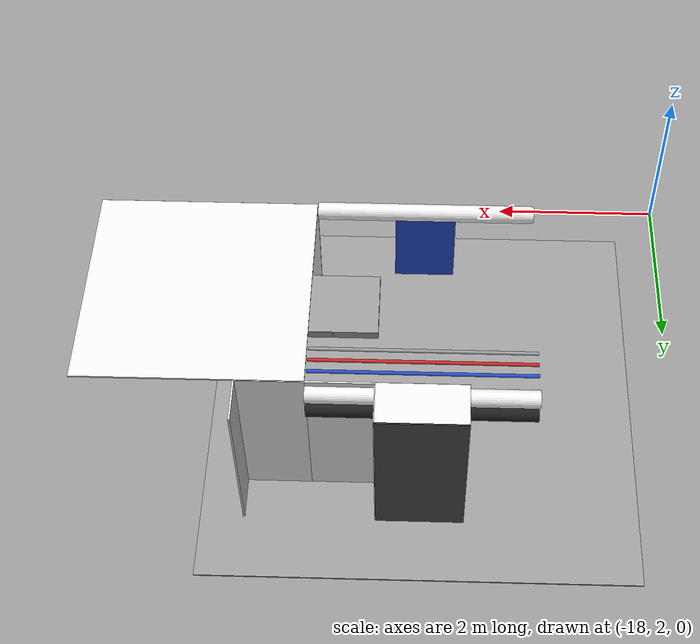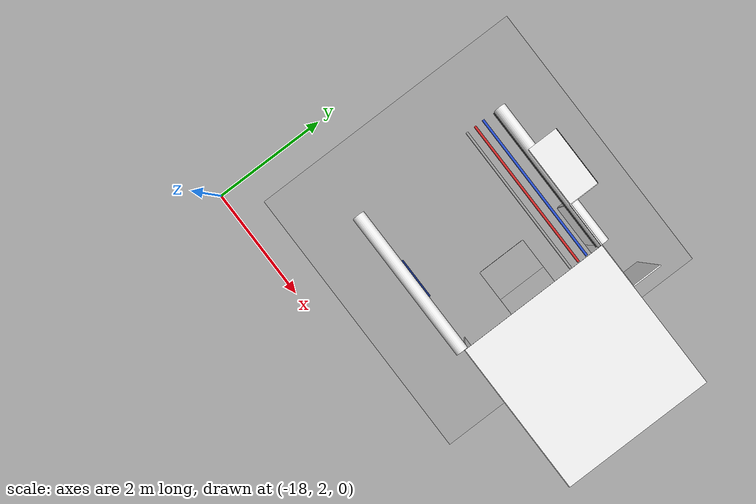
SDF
<sdf version="1.6">
 <world name="default">
  <model name="wall_left_-5_2_0_1">
   <static>1</static>
   <pose>-12.5 3.75 1.0 0.0 0.0 3.14</pose>
   <link name="link">
    <collision name="collision"><geometry><box><size>2.5 0.02 2.0</size></box></geometry></collision>
    <visual name="visual">
     <material>
      <script><name>Gazebo/White</name><uri>file://media/materials/scripts/gazebo.material</uri></script>
     </material>
     <geometry><box><size>2.5 0.02 2.0</size></box></geometry>
    </visual>
   </link>
  </model>
  <model name="wall_top_-5_2_0_1">
   <static>1</static>
   <pose>-12.5 5.0 2.0 1.57 0.0 1.57</pose>
   <link name="link">
    <collision name="collision"><geometry><box><size>2.5 0.02 2.5</size></box></geometry></collision>
    <visual name="visual">
     <material>
      <script><name>Gazebo/White</name><uri>file://media/materials/scripts/gazebo.material</uri></script>
     </material>
     <geometry><box><size>2.5 0.02 2.5</size></box></geometry>
    </visual>
   </link>
  </model>
  <model name="ceiling_1_-5_2_0_1">
   <pose>-12.5 5.0 1.7 0.0 0.0 1.57</pose>
   <link name="link_1">
    <visual name="visual">
     <geometry><box><size>0.8 1 0.1</size></box></geometry>
     <material>
      <script><uri>file://media/materials/scripts/gazebo.material</uri><name>Gazebo/Grey</name></script>
     </material>
    </visual>
    <collision name="collision"><geometry><box><size>0.8 1 0.1</size></box></geometry></collision>
   </link>
   <static>1</static>
  </model>
  <model name="ceiling_1_-5_2_2_1">
   <pose>-13.5 5.0 1.7 0.0 0.0 1.57</pose>
   <link name="link_1">
    <visual name="visual">
     <geometry><box><size>0.8 1 0.1</size></box></geometry>
     <material>
      <script><uri>file://media/materials/scripts/gazebo.material</uri><name>Gazebo/Grey</name></script>
     </material>
    </visual>
    <collision name="collision"><geometry><box><size>0.8 1 0.1</size></box></geometry></collision>
   </link>
   <static>1</static>
  </model>
  <model name="wall_right_front_left_-5_2_0_1">
   <static>1</static>
   <pose>-13.375 6.25 1.0 0.0 0.0 3.14</pose>
   <link name="link">
    <collision name="collision"><geometry><box><size>0.75 0.02 2.0</size></box></geometry></collision>
    <visual name="visual">
     <material>
      <script><name>Gazebo/White</name><uri>file://media/materials/scripts/gazebo.material</uri></script>
     </material>
     <geometry><box><size>0.75 0.02 2.0</size></box></geometry>
    </visual>
   </link>
  </model>
  <model name="wall_right_inside_left_-5_2_0_1">
   <static>1</static>
   <pose>-13.0 6.5 1.0 0.0 0.0 1.57</pose>
   <link name="link">
    <collision name="collision"><geometry><box><size>0.5 0.02 2</size></box></geometry></collision>
    <visual name="visual">
     <material>
      <script><name>Gazebo/White</name><uri>file://media/materials/scripts/gazebo.material</uri></script>
     </material>
     <geometry><box><size>0.5 0.02 2</size></box></geometry>
    </visual>
   </link>
  </model>
  <model name="ceiling_1_-6_2_1_1">
   <pose>-14.0 5.0 1.7 0.0 0.0 1.57</pose>
   <link name="link_1">
    <visual name="visual">
     <geometry><box><size>0.8 1 0.1</size></box></geometry>
     <material>
      <script><uri>file://media/materials/scripts/gazebo.material</uri><name>Gazebo/Grey</name></script>
     </material>
    </visual>
    <collision name="collision"><geometry><box><size>0.8 1 0.1</size></box></geometry></collision>
   </link>
   <static>1</static>
  </model>
  <model name="white_pipe_left_-6_2_0_1">
   <static>1</static>
   <pose>-15.0 5.0 1.84 0.0 0.0 1.57</pose>
   <link name="link_0">
    <visual name="visual">
     <pose>-1.3 0 0 1.57 0 0</pose>
     <geometry><cylinder><radius>0.1</radius><length>2.5</length></cylinder></geometry>
     <material>
      <script><uri>file://media/materials/scripts/gazebo.material</uri><name>Gazebo/White</name></script>
     </material>
    </visual>
    <collision name="collision">
     <pose>-1.3 0 0 1.57 0 0</pose>
     <geometry><cylinder><radius>0.1</radius><length>2.5</length></cylinder></geometry>
    </collision>
   </link>
  </model>
  <model name="white_pipe_right_-6_2_0_1">
   <static>1</static>
   <pose>-15.0 5.0 1.84 0.0 0.0 1.57</pose>
   <link name="link_0">
    <visual name="visual">
     <pose>1.3 0 0 1.57 0 0</pose>
     <geometry><cylinder><radius>0.1</radius><length>2.5</length></cylinder></geometry>
     <material>
      <script><uri>file://media/materials/scripts/gazebo.material</uri><name>Gazebo/White</name></script>
     </material>
    </visual>
    <collision name="collision">
     <pose>1.3 0 0 1.57 0 0</pose>
     <geometry><cylinder><radius>0.1</radius><length>2.5</length></cylinder></geometry>
    </collision>
   </link>
  </model>
  <model name="black_pipe_right_-6_2_0_1">
   <static>1</static>
   <pose>-15.0 5.0 1.84 0.0 0.0 1.57</pose>
   <link name="link_0">
    <visual name="visual">
     <pose>1.3 0 -0.25 1.57 0 0</pose>
     <geometry><cylinder><radius>0.1</radius><length>2.5</length></cylinder></geometry>
     <material>
      <script><uri>file://media/materials/scripts/gazebo.material</uri><name>Gazebo/Black</name></script>
     </material>
    </visual>
    <collision name="collision">
     <pose>1.3 0 -0.25 1.57 0 0</pose>
     <geometry><cylinder><radius>0.1</radius><length>2.5</length></cylinder></geometry>
    </collision>
   </link>
  </model>
  <model name="grey_pipe_right_-6_2_0_1">
   <static>1</static>
   <pose>-15.0 5.0 1.84 0.0 0.0 1.57</pose>
   <link name="link_0">
    <visual name="visual">
     <pose>0.7 0 0 1.57 0 0</pose>
     <geometry><cylinder><radius>0.02</radius><length>2.5</length></cylinder></geometry>
     <material>
      <script><uri>file://media/materials/scripts/gazebo.material</uri><name>Gazebo/Grey</name></script>
     </material>
    </visual>
    <collision name="collision">
     <pose>0.7 0 0 1.57 0 0</pose>
     <geometry><cylinder><radius>0.02</radius><length>2.5</length></cylinder></geometry>
    </collision>
   </link>
  </model>
  <model name="red_pipe_right_-6_2_0_1">
   <static>1</static>
   <pose>-15.0 5.0 1.84 0.0 0.0 1.57</pose>
   <link name="link_0">
    <visual name="visual">
     <pose>0.85 0 0 1.57 0 0</pose>
     <geometry><cylinder><radius>0.02</radius><length>2.5</length></cylinder></geometry>
     <material>
      <script><uri>file://media/materials/scripts/gazebo.material</uri><name>Gazebo/Red</name></script>
     </material>
    </visual>
    <collision name="collision">
     <pose>0.85 0 0 1.57 0 0</pose>
     <geometry><cylinder><radius>0.02</radius><length>2.5</length></cylinder></geometry>
    </collision>
   </link>
  </model>
  <model name="blue_pipe_right_-6_2_0_1">
   <static>1</static>
   <pose>-15.0 5.0 1.84 0.0 0.0 1.57</pose>
   <link name="link_0">
    <visual name="visual">
     <pose>1 0 0 1.57 0 0</pose>
     <geometry><cylinder><radius>0.02</radius><length>2.5</length></cylinder></geometry>
     <material>
      <script><uri>file://media/materials/scripts/gazebo.material</uri><name>Gazebo/Blue</name></script>
     </material>
    </visual>
    <collision name="collision">
     <pose>1 0 0 1.57 0 0</pose>
     <geometry><cylinder><radius>0.02</radius><length>2.5</length></cylinder></geometry>
    </collision>
   </link>
  </model>
  <model name="panel_-6_2_0_1">
   <static>1</static>
   <pose>-15.0 3.75 1.3 0.0 0.0 1.57</pose>
   <link name="link">
    <collision name="collision"><geometry><box><size>0.04 0.7 1</size></box></geometry></collision>
    <visual name="visual">
     <material>
      <script><name>Gazebo/Blue</name><uri>file://media/materials/scripts/gazebo.material</uri></script>
     </material>
     <geometry><box><size>0.04 0.7 1</size></box></geometry>
    </visual>
   </link>
  </model>
  <model name="wall_right_front_right_-6_2_0_1">
   <static>1</static>
   <pose>-14.125 6.25 1.0 0.0 0.0 3.14</pose>
   <link name="link">
    <collision name="collision"><geometry><box><size>0.75 0.02 2.0</size></box></geometry></collision>
    <visual name="visual">
     <material>
      <script><name>Gazebo/White</name><uri>file://media/materials/scripts/gazebo.material</uri></script>
     </material>
     <geometry><box><size>0.75 0.02 2.0</size></box></geometry>
    </visual>
   </link>
  </model>
  <model name="wall_right_front_up_-6_2_0_1">
   <static>1</static>
   <pose>-15.0 6.25 2.0 0.0 0.0 3.14</pose>
   <link name="link">
    <collision name="collision"><geometry><box><size>1.0 0.02 0.001</size></box></geometry></collision>
    <visual name="visual">
     <material>
      <script><name>Gazebo/White</name><uri>file://media/materials/scripts/gazebo.material</uri></script>
     </material>
     <geometry><box><size>1.0 0.02 0.001</size></box></geometry>
    </visual>
   </link>
  </model>
  <model name="wall_right_inside_back_-6_2_0_1">
   <static>1</static>
   <pose>-15.0 6.75 1.0 0.0 0.0 3.14</pose>
   <link name="link">
    <collision name="collision"><geometry><box><size>1 0.02 2</size></box></geometry></collision>
    <visual name="visual">
     <material>
      <script><name>Gazebo/DarkGrey</name><uri>file://media/materials/scripts/gazebo.material</uri></script>
     </material>
     <geometry><box><size>1 0.02 2</size></box></geometry>
    </visual>
   </link>
  </model>
  <model name="wall_right_inside_right_-6_2_0_1">
   <static>1</static>
   <pose>-14.5 6.5 1.0 0.0 0.0 1.57</pose>
   <link name="link">
    <collision name="collision"><geometry><box><size>0.5 0.02 2</size></box></geometry></collision>
    <visual name="visual">
     <material>
      <script><name>Gazebo/White</name><uri>file://media/materials/scripts/gazebo.material</uri></script>
     </material>
     <geometry><box><size>0.5 0.02 2</size></box></geometry>
    </visual>
   </link>
  </model>
  <model name="wall_right_inside_top_-6_2_0_1">
   <static>1</static>
   <pose>-15.0 6.5 2.0 1.57 0.0 3.14</pose>
   <link name="link">
    <collision name="collision"><geometry><box><size>1 0.02 0.5</size></box></geometry></collision>
    <visual name="visual">
     <material>
      <script><name>Gazebo/White</name><uri>file://media/materials/scripts/gazebo.material</uri></script>
     </material>
     <geometry><box><size>1 0.02 0.5</size></box></geometry>
    </visual>
   </link>
  </model>
  <model name="wall_bottom_-6_2_0_1">
   <static>1</static>
   <pose>-15.0 5.0 0.0 0.0 0.0 1.57</pose>
   <link name="link">
    <collision name="collision"><geometry><box><size>5.0 5.0 0.02</size></box></geometry></collision>
    <visual name="visual">
     <material>
      <script><name>Gazebo/Grey</name><uri>file://media/materials/scripts/gazebo.material</uri></script>
     </material>
     <geometry><box><size>5.0 5.0 0.02</size></box></geometry>
    </visual>
   </link>
  </model>
 </world>
</sdf>
